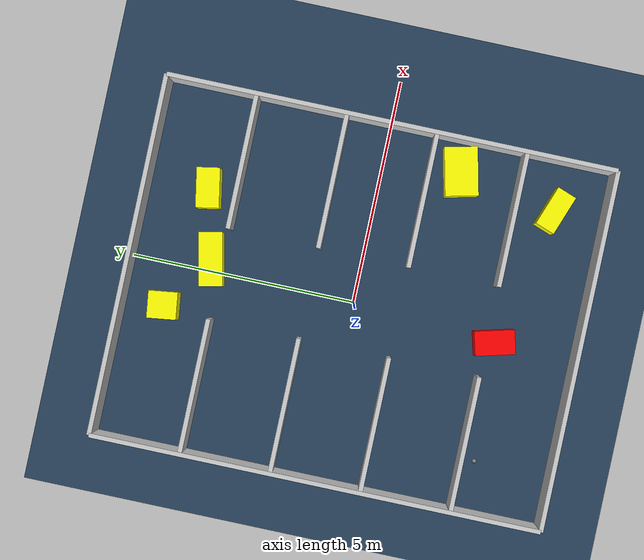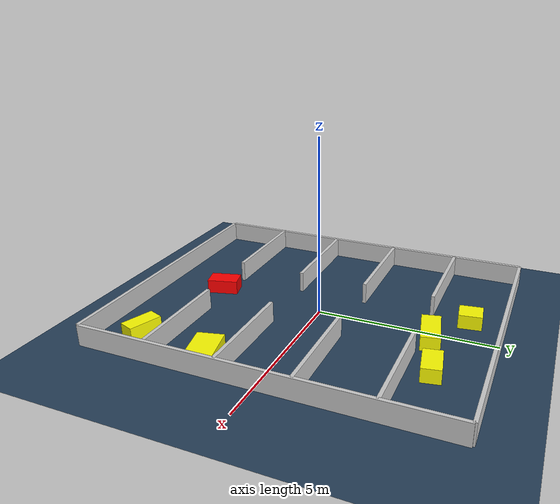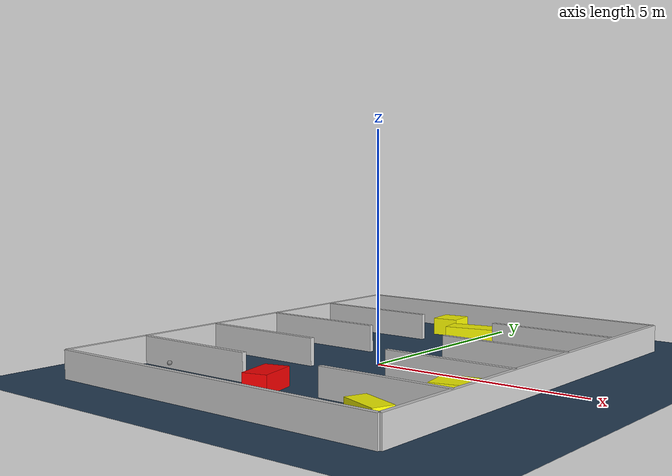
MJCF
<?xml version="1.0" ?>
<mujoco model="generated_environment">
  <option timestep="0.01" integrator="RK4" cone="elliptic"/>
  <default>
    <geom density="1"/>
  </default>
  <asset>
    <texture builtin="gradient" height="3072" rgb1="0.3 0.5 0.7" rgb2="0 0 0" type="skybox" width="512"/>
    <texture builtin="checker" height="300" mark="edge" markrgb="0.8 0.8 0.8" name="groundplane" rgb1="0.2 0.3 0.4" rgb2="0.1 0.2 0.3" type="2d" width="300"/>
    <material name="groundplane" reflectance="0.2" texrepeat="5 5" texture="groundplane" texuniform="true"/>
    <material name="robot" rgba="0.0 1.0 0.0 1"/>
  </asset>
  <worldbody>
    <light dir="0 0 -1" directional="true" pos="0 0 1.5"/>
    <geom condim="4" friction="1.0 0.005 0.001" material="groundplane" name="floor" size="0 0 0.05" type="plane"/>
    <body name="walls">
      <geom name="wall_1" condim="4" pos="-4.0 0.0 0.3" rgba="0.800000011920929 0.800000011920929 0.800000011920929 1.0" size="0.05 5.0 0.3" type="box"/>
      <geom name="wall_2" condim="4" pos="4.0 0.0 0.3" rgba="0.800000011920929 0.800000011920929 0.800000011920929 1.0" size="0.05 5.0 0.3" type="box"/>
      <geom name="wall_3" condim="4" pos="0.0 -5.0 0.3" rgba="0.800000011920929 0.800000011920929 0.800000011920929 1.0" size="4.0 0.05 0.3" type="box"/>
      <geom name="wall_4" condim="4" pos="0.0 5.0 0.3" rgba="0.800000011920929 0.800000011920929 0.800000011920929 1.0" size="4.0 0.05 0.3" type="box"/>
      <geom name="wall_5" condim="4" pos="-2.5 -3.0 0.3" rgba="0.800000011920929 0.800000011920929 0.800000011920929 1.0" size="1.5 0.05 0.3" type="box"/>
      <geom name="wall_6" condim="4" pos="2.5 -3.0 0.3" rgba="0.800000011920929 0.800000011920929 0.800000011920929 1.0" size="1.5 0.05 0.3" type="box"/>
      <geom name="wall_7" condim="4" pos="-2.5 -1.0 0.3" rgba="0.800000011920929 0.800000011920929 0.800000011920929 1.0" size="1.5 0.05 0.3" type="box"/>
      <geom name="wall_8" condim="4" pos="2.5 -1.0 0.3" rgba="0.800000011920929 0.800000011920929 0.800000011920929 1.0" size="1.5 0.05 0.3" type="box"/>
      <geom name="wall_9" condim="4" pos="-2.5 1.0 0.3" rgba="0.800000011920929 0.800000011920929 0.800000011920929 1.0" size="1.5 0.05 0.3" type="box"/>
      <geom name="wall_10" condim="4" pos="2.5 1.0 0.3" rgba="0.800000011920929 0.800000011920929 0.800000011920929 1.0" size="1.5 0.05 0.3" type="box"/>
      <geom name="wall_11" condim="4" pos="-2.5 3.0 0.3" rgba="0.800000011920929 0.800000011920929 0.800000011920929 1.0" size="1.5 0.05 0.3" type="box"/>
      <geom name="wall_12" condim="4" pos="2.5 3.0 0.3" rgba="0.800000011920929 0.800000011920929 0.800000011920929 1.0" size="1.5 0.05 0.3" type="box"/>
    </body>
    <body name="robot">
      <joint name="joint_x" type="slide" pos="0 0 0" axis="1 0 0"/>
      <joint name="joint_y" type="slide" pos="0 0 0" axis="0 1 0"/>
      <geom name="robot" type="sphere" pos="-2.8574136405554125 -3.327381718562031 0.2" size="0.05" mass="5." friction="1.0 0.005 0.0001" condim="4"/>
      <site name="sensor_ball"/>
    </body>
    <body name="obstacle_1_static">
      <geom name="obstacle_1_static" condim="4" pos="-0.20714640824925068 -3.200298594072872 0.2" euler="0 0 14.592997143930377" friction="1.0 0.005 0.001" rgba="1 0 0 1" size="0.2699102931048541 0.442976388341067 0.2" type="box"/>
    </body>
    <body name="obstacle_2_movable">
      <geom name="obstacle_2_movable" condim="4" pos="1.792631870632408 3.6432497864235414 0.2" euler="0 0 10.234149460998117" friction="1.0 0.005 0.001" rgba="1 1 0 1" size="0.44253671470179845 0.2573066900075116 0.2" type="box" mass="0.1"/>
      <joint type="free"/>
    </body>
    <body name="obstacle_3_movable">
      <geom name="obstacle_3_movable" condim="4" pos="-0.9285593514636892 4.07870478666424 0.2" euler="0 0 7.555127009975631" friction="1.0 0.005 0.001" rgba="1 1 0 1" size="0.3026640738412875 0.32211052699386944 0.2" type="box" mass="0.1"/>
      <joint type="free"/>
    </body>
    <body name="obstacle_4_movable">
      <geom name="obstacle_4_movable" condim="4" pos="3.304526576954915 -1.6974265707820697 0.2" euler="0 0 283.104707040619" friction="1.0 0.005 0.001" rgba="1 1 0 1" size="0.36583834175117586 0.5372188134506062 0.2" type="box" mass="0.1"/>
      <joint type="free"/>
    </body>
    <body name="obstacle_5_movable">
      <geom name="obstacle_5_movable" condim="4" pos="2.8995948672178624 -3.8983960306473704 0.2" euler="0 0 250.0277968210715" friction="1.0 0.005 0.001" rgba="1 1 0 1" size="0.22557722899486532 0.463511396880664 0.2" type="box" mass="0.1"/>
      <joint type="free"/>
    </body>
    <body name="obstacle_6_movable">
      <geom name="obstacle_6_movable" condim="4" pos="0.27306960434125127 3.2588433088118984 0.2" euler="0 0 192.13183511146656" friction="1.0 0.005 0.001" rgba="1 1 0 1" size="0.5935485642194627 0.2616667907485787 0.2" type="box" mass="0.1"/>
      <joint type="free"/>
    </body>
  </worldbody>
  <actuator>
    <motor name="actuator_x" joint="joint_x" gear="1" ctrlrange="-1 1"/>
    <motor name="actuator_y" joint="joint_y" gear="1" ctrlrange="-1 1"/>
  </actuator>
</mujoco>
